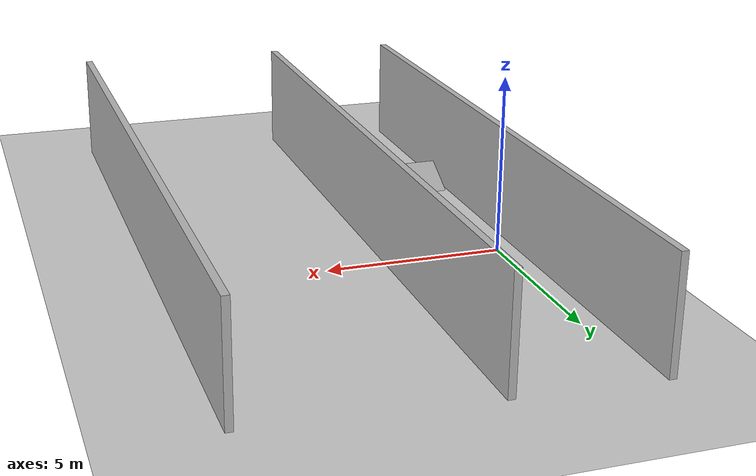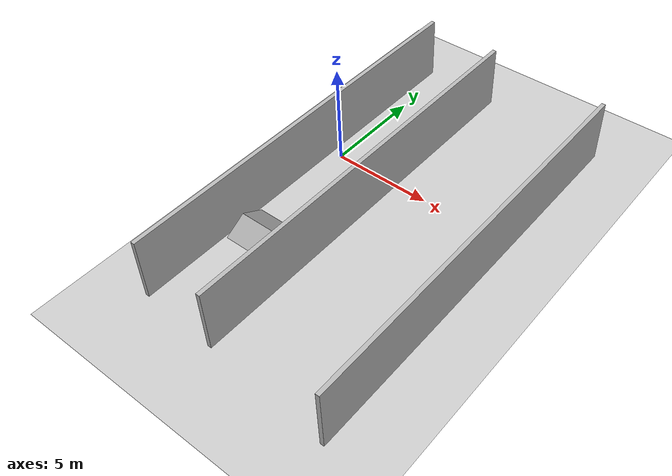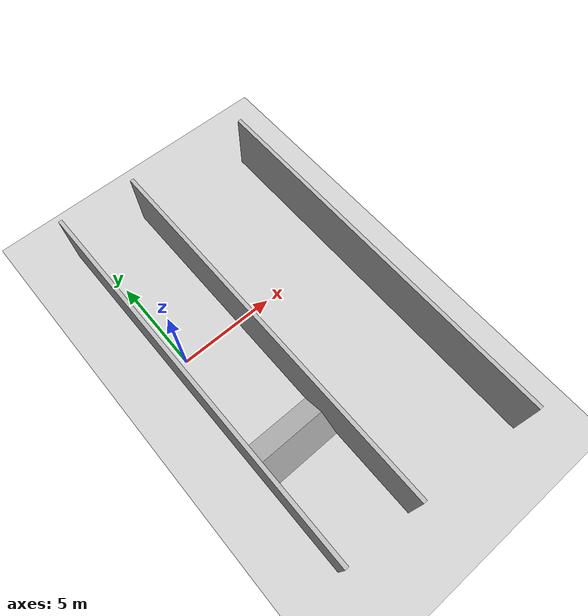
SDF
<sdf version="1.6">
 <world name="default">
  <light name="sun" type="directional">
   <pose>0 0 10 0 -0 0</pose>
   <diffuse>0.8 0.8 0.8 1</diffuse>
   <specular>0.2 0.2 0.2 1</specular>
   <attenuation>
    <range>1000</range>
    <constant>0.9</constant>
    <linear>0.01</linear>
    <quadratic>0.001</quadratic>
   </attenuation>
   <direction>-0.5 0.1 -0.9</direction>
  </light>
  <model name="ground_plane">
   <static>1</static>
   <link name="link">
    <collision name="collision">
     <geometry><plane><normal>0 0 1</normal><size>100 100</size></plane></geometry>
     <surface>
      <contact><collide_bitmask>65535</collide_bitmask></contact>
      <friction><ode><mu>100</mu><mu2>50</mu2></ode></friction>
     </surface>
    </collision>
    <visual name="visual">
     <cast_shadows>0</cast_shadows>
     <geometry><plane><normal>0 0 1</normal><size>100 100</size></plane></geometry>
     <material>
      <script><uri>file://media/materials/scripts/gazebo.material</uri><name>Gazebo/Grey</name></script>
     </material>
    </visual>
   </link>
  </model>
  <gravity>0 0 -9.8</gravity>
  <magnetic_field>6e-06 2.3e-05 -4.2e-05</magnetic_field>
  <atmosphere type="adiabatic"/>
  <physics name="default_physics" default="0" type="ode">
   <max_step_size>0.001</max_step_size>
   <real_time_factor>1</real_time_factor>
   <real_time_update_rate>1000</real_time_update_rate>
  </physics>
  <scene><ambient>0.4 0.4 0.4 1</ambient><background>0.7 0.7 0.7 1</background><shadows>1</shadows></scene>
  <audio><device>default</device></audio>
  <spherical_coordinates>
   <surface_model>EARTH_WGS84</surface_model>
   <latitude_deg>0</latitude_deg>
   <longitude_deg>0</longitude_deg>
   <elevation>0</elevation>
   <heading_deg>0</heading_deg>
  </spherical_coordinates>
  <model name="Wall_0">
   <static>1</static>
   <link name="link">
    <inertial>
     <pose>0 0 0.4 0 -0 0</pose>
     <mass>500</mass>
     <inertia><ixx>51.2096</ixx><iyy>51.2096</iyy><izz>25</izz><ixy>0</ixy><ixz>0</ixz><iyz>0</iyz></inertia>
    </inertial>
    <collision name="collision">
     <geometry><mesh><scale>1 1 1</scale><uri>model://wall/meshes/wall.dae</uri></mesh></geometry>
    </collision>
    <visual name="visual">
     <geometry><mesh><scale>1 1 1</scale><uri>model://wall/meshes/wall.dae</uri></mesh></geometry>
    </visual>
   </link>
   <pose>-0.648158 -1.63902 1.58297 0 -0 0</pose>
  </model>
  <model name="Ramp30Deg">
   <static>1</static>
   <link name="link">
    <gravity>0</gravity>
    <collision name="collision">
     <geometry><mesh><scale>1 1 1</scale><uri>model://ramp_30/meshes/ramp30.dae</uri></mesh></geometry>
    </collision>
    <visual name="visual">
     <geometry><mesh><scale>1 1 1</scale><uri>model://ramp_30/meshes/ramp30.dae</uri></mesh></geometry>
    </visual>
   </link>
   <pose>1.07893 -6.55019 0 0 -0 1.57492</pose>
  </model>
  <model name="Wall_0_clone">
   <static>1</static>
   <link name="link">
    <inertial>
     <pose>0 0 0.4 0 -0 0</pose>
     <mass>500</mass>
     <inertia><ixx>51.2096</ixx><iyy>51.2096</iyy><izz>25</izz><ixy>0</ixy><ixz>0</ixz><iyz>0</iyz></inertia>
    </inertial>
    <collision name="collision">
     <geometry><mesh><scale>1 1 1</scale><uri>model://wall/meshes/wall.dae</uri></mesh></geometry>
    </collision>
    <visual name="visual">
     <geometry><mesh><scale>1 1 1</scale><uri>model://wall/meshes/wall.dae</uri></mesh></geometry>
    </visual>
   </link>
   <pose>3.24718 -1.85559 1.58297 0 -0 0</pose>
  </model>
  <model name="Ramp30Deg_clone">
   <static>1</static>
   <link name="link">
    <gravity>0</gravity>
    <collision name="collision">
     <geometry><mesh><scale>1 1 1</scale><uri>model://ramp_30/meshes/ramp30.dae</uri></mesh></geometry>
    </collision>
    <visual name="visual">
     <geometry><mesh><scale>1 1 1</scale><uri>model://ramp_30/meshes/ramp30.dae</uri></mesh></geometry>
    </visual>
   </link>
   <pose>1.7833 -5.63338 0 0 0 -1.56203</pose>
  </model>
  <model name="Wall_0_clone_clone">
   <static>1</static>
   <link name="link">
    <inertial>
     <pose>0 0 0.4 0 -0 0</pose>
     <mass>500</mass>
     <inertia><ixx>51.2096</ixx><iyy>51.2096</iyy><izz>25</izz><ixy>0</ixy><ixz>0</ixz><iyz>0</iyz></inertia>
    </inertial>
    <collision name="collision">
     <geometry><mesh><scale>1 1 1</scale><uri>model://wall/meshes/wall.dae</uri></mesh></geometry>
    </collision>
    <visual name="visual">
     <geometry><mesh><scale>1 1 1</scale><uri>model://wall/meshes/wall.dae</uri></mesh></geometry>
    </visual>
   </link>
   <pose>9.52022 -2.33408 1.58297 0 -0 0</pose>
  </model>
 </world>
</sdf>
